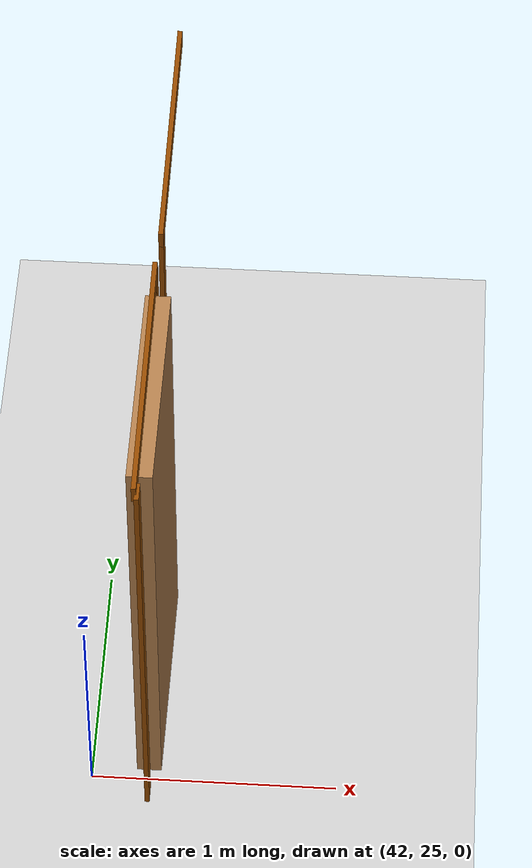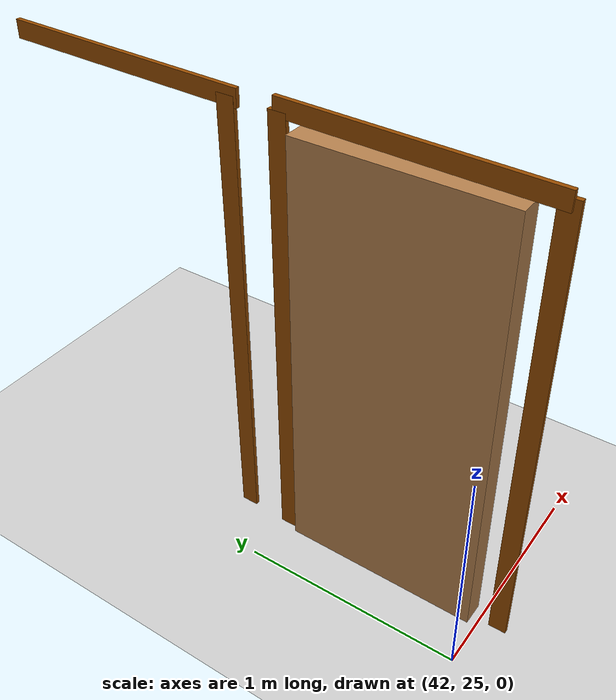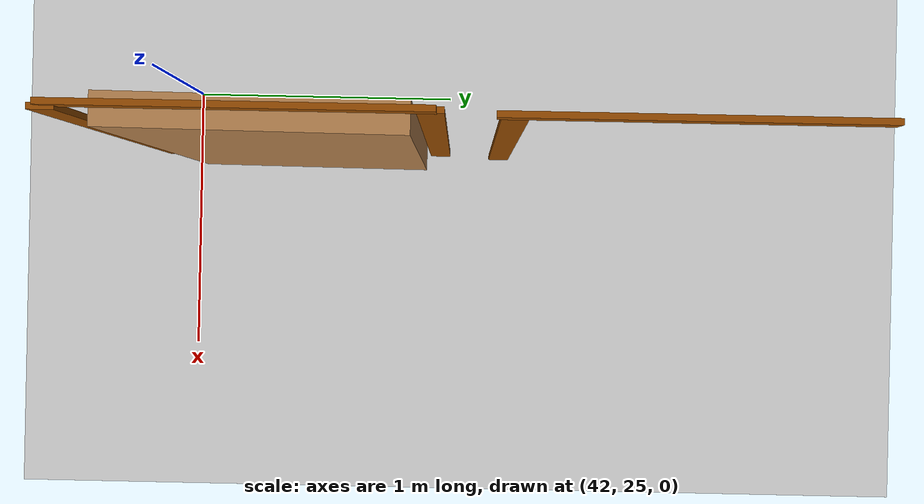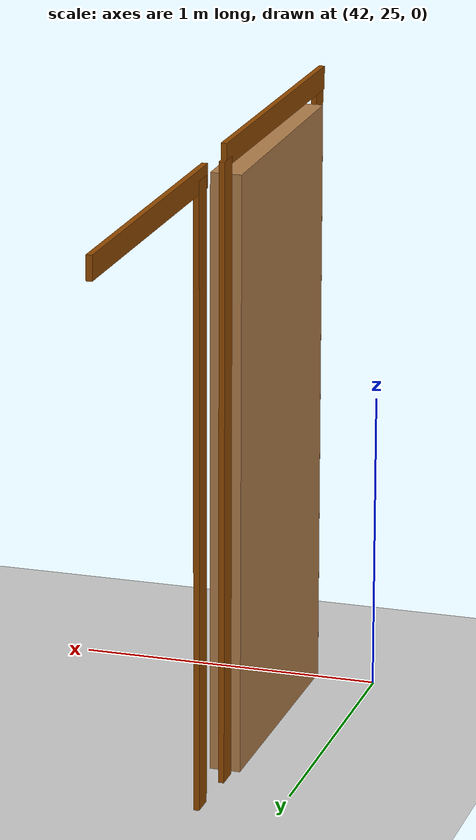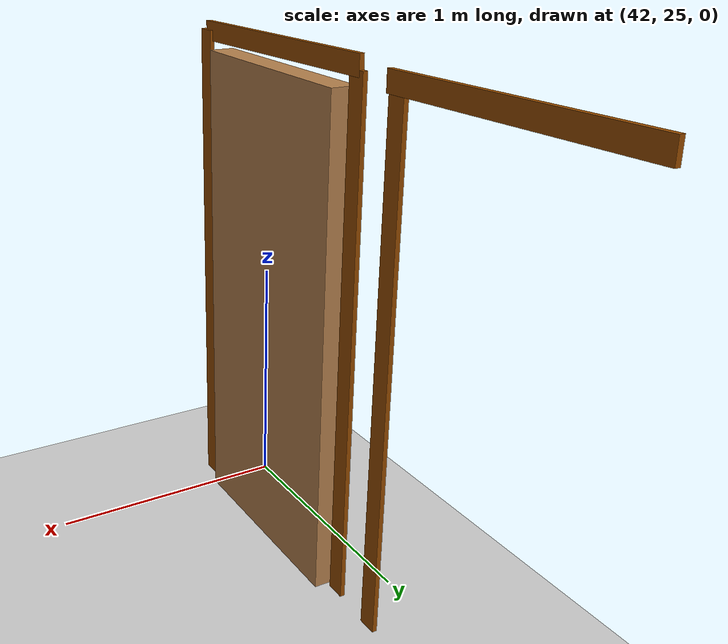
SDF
<sdf version="1.6">
 <world name="default">
  <model name="ground_plane">
   <static>1</static>
   <link name="link">
    <collision name="collision">
     <geometry><plane><normal>0 0 1</normal><size>100 100</size></plane></geometry>
     <surface><friction><ode><mu>100</mu><mu2>50</mu2></ode></friction></surface>
    </collision>
    <visual name="visual">
     <cast_shadows>0</cast_shadows>
     <geometry><plane><normal>0 0 1</normal><size>100 100</size></plane></geometry>
     <material>
      <script><uri>file://media/materials/scripts/gazebo.material</uri><name>Gazebo/Grey</name></script>
     </material>
    </visual>
   </link>
  </model>
  <model name="basic_ply_door_corrected_clone_0_clone_clone_0">
   <link name="link">
    <pose>-0 0 1.00385 0 -0 0</pose>
    <inertial>
     <mass>0.5167</mass>
     <inertia>
      <ixx>0.00086117</ixx>
      <ixy>0</ixy>
      <ixz>0</ixz>
      <iyy>0.00086117</iyy>
      <iyz>0</iyz>
      <izz>0.00086117</izz>
     </inertia>
    </inertial>
    <gravity>0</gravity>
    <visual name="visual">
     <geometry><box><size>0.88 0.1 1.96</size></box></geometry>
     <material>
      <script><uri>file://media/materials/scripts/gazebo.material</uri><name>Gazebo/Wood</name></script>
      <shader type="pixel"><normal_map>__default__</normal_map></shader>
      <ambient>1 1 1 1</ambient>
      <diffuse>1 1 1 1</diffuse>
      <specular>0.2 0.2 0.2 1</specular>
      <emissive>0 0 0 1</emissive>
     </material>
    </visual>
    <collision name="collision">
     <geometry><box><size>0.88 0.1 1.96</size></box></geometry>
     <surface>
      <friction>
       <ode><mu>1</mu><mu2>1</mu2><fdir1>0 0 0</fdir1><slip1>0</slip1><slip2>0</slip2></ode>
       <torsional>
        <coefficient>1</coefficient>
        <patch_radius>0</patch_radius>
        <surface_radius>0.01</surface_radius>
        <use_patch_radius>0</use_patch_radius>
        <ode><slip>0</slip></ode>
       </torsional>
      </friction>
      <bounce><restitution_coefficient>0</restitution_coefficient><threshold>1e+06</threshold></bounce>
      <contact>
       <collide_without_contact>0</collide_without_contact>
       <collide_without_contact_bitmask>1</collide_without_contact_bitmask>
       <collide_bitmask>1</collide_bitmask>
       <ode>
        <soft_cfm>0</soft_cfm>
        <soft_erp>0.2</soft_erp>
        <kp>100000</kp>
        <kd>100</kd>
        <max_vel>100</max_vel>
        <min_depth>0.001</min_depth>
       </ode>
       <bullet>
        <split_impulse>1</split_impulse>
        <split_impulse_penetration_threshold>-0.01</split_impulse_penetration_threshold>
        <soft_cfm>0</soft_cfm>
        <soft_erp>0.2</soft_erp>
        <kp>100000</kp>
        <kd>100</kd>
       </bullet>
      </contact>
     </surface>
    </collision>
   </link>
   <static>1</static>
   <pose>42.2357 25.4705 -0.00101 0 -0 1.56379</pose>
  </model>
  <model name="oak_frame_0_clone_clone">
   <link name="link">
    <inertial>
     <mass>1</mass>
     <inertia>
      <ixx>0.166667</ixx>
      <ixy>0</ixy>
      <ixz>0</ixz>
      <iyy>0.166667</iyy>
      <iyz>0</iyz>
      <izz>0.166667</izz>
     </inertia>
    </inertial>
    <visual name="visual">
     <geometry><box><size>0.018685 0.076446 2.026</size></box></geometry>
     <material>
      <script><name>Gazebo/Grey</name><uri>file://media/materials/scripts/gazebo.material</uri></script>
      <shader type="pixel"><normal_map>__default__</normal_map></shader>
      <diffuse>0.58 0.29 0 0</diffuse>
      <ambient>0.58 0.29 0 1</ambient>
      <specular>0.01 0.01 0.01 1</specular>
      <emissive>0 0 0 1</emissive>
     </material>
    </visual>
    <collision name="collision">
     <geometry><box><size>0.018685 0.076446 2.026</size></box></geometry>
     <surface>
      <friction>
       <ode><mu>1</mu><mu2>1</mu2><fdir1>0 0 0</fdir1><slip1>0</slip1><slip2>0</slip2></ode>
       <torsional>
        <coefficient>1</coefficient>
        <patch_radius>0</patch_radius>
        <surface_radius>0</surface_radius>
        <use_patch_radius>1</use_patch_radius>
        <ode><slip>0</slip></ode>
       </torsional>
      </friction>
      <bounce><restitution_coefficient>0</restitution_coefficient><threshold>1e+06</threshold></bounce>
      <contact>
       <collide_without_contact>0</collide_without_contact>
       <collide_without_contact_bitmask>1</collide_without_contact_bitmask>
       <collide_bitmask>1</collide_bitmask>
       <ode>
        <soft_cfm>0</soft_cfm>
        <soft_erp>0.2</soft_erp>
        <kp>1e+13</kp>
        <kd>1</kd>
        <max_vel>0.01</max_vel>
        <min_depth>0</min_depth>
       </ode>
       <bullet>
        <split_impulse>1</split_impulse>
        <split_impulse_penetration_threshold>-0.01</split_impulse_penetration_threshold>
        <soft_cfm>0</soft_cfm>
        <soft_erp>0.2</soft_erp>
        <kp>1e+13</kp>
        <kd>1</kd>
       </bullet>
      </contact>
     </surface>
    </collision>
   </link>
   <static>1</static>
   <pose>42.2231 25.9652 1.03242 0 -0 0</pose>
  </model>
  <model name="oak_frame_0_clone_clone_0">
   <link name="link">
    <inertial>
     <mass>1</mass>
     <inertia>
      <ixx>0.166667</ixx>
      <ixy>0</ixy>
      <ixz>0</ixz>
      <iyy>0.166667</iyy>
      <iyz>0</iyz>
      <izz>0.166667</izz>
     </inertia>
    </inertial>
    <visual name="visual">
     <geometry><box><size>0.018685 0.076446 2.026</size></box></geometry>
     <material>
      <script><name>Gazebo/Grey</name><uri>file://media/materials/scripts/gazebo.material</uri></script>
      <shader type="pixel"><normal_map>__default__</normal_map></shader>
      <diffuse>0.58 0.29 0 0</diffuse>
      <ambient>0.58 0.29 0 1</ambient>
      <specular>0.01 0.01 0.01 1</specular>
      <emissive>0 0 0 1</emissive>
     </material>
    </visual>
    <collision name="collision">
     <geometry><box><size>0.018685 0.076446 2.026</size></box></geometry>
     <surface>
      <friction>
       <ode><mu>1</mu><mu2>1</mu2><fdir1>0 0 0</fdir1><slip1>0</slip1><slip2>0</slip2></ode>
       <torsional>
        <coefficient>1</coefficient>
        <patch_radius>0</patch_radius>
        <surface_radius>0</surface_radius>
        <use_patch_radius>1</use_patch_radius>
        <ode><slip>0</slip></ode>
       </torsional>
      </friction>
      <bounce><restitution_coefficient>0</restitution_coefficient><threshold>1e+06</threshold></bounce>
      <contact>
       <collide_without_contact>0</collide_without_contact>
       <collide_without_contact_bitmask>1</collide_without_contact_bitmask>
       <collide_bitmask>1</collide_bitmask>
       <ode>
        <soft_cfm>0</soft_cfm>
        <soft_erp>0.2</soft_erp>
        <kp>1e+13</kp>
        <kd>1</kd>
        <max_vel>0.01</max_vel>
        <min_depth>0</min_depth>
       </ode>
       <bullet>
        <split_impulse>1</split_impulse>
        <split_impulse_penetration_threshold>-0.01</split_impulse_penetration_threshold>
        <soft_cfm>0</soft_cfm>
        <soft_erp>0.2</soft_erp>
        <kp>1e+13</kp>
        <kd>1</kd>
       </bullet>
      </contact>
     </surface>
    </collision>
   </link>
   <static>1</static>
   <pose>42.2348 24.9161 1.03242 0 -0 0</pose>
  </model>
  <model name="oak_frame_0_clone_clone_1">
   <link name="link">
    <inertial>
     <mass>1</mass>
     <inertia>
      <ixx>0.166667</ixx>
      <ixy>0</ixy>
      <ixz>0</ixz>
      <iyy>0.166667</iyy>
      <iyz>0</iyz>
      <izz>0.166667</izz>
     </inertia>
    </inertial>
    <visual name="visual">
     <geometry><box><size>0.018685 0.076446 2.026</size></box></geometry>
     <material>
      <script><name>Gazebo/Grey</name><uri>file://media/materials/scripts/gazebo.material</uri></script>
      <shader type="pixel"><normal_map>__default__</normal_map></shader>
      <diffuse>0.58 0.29 0 0</diffuse>
      <ambient>0.58 0.29 0 1</ambient>
      <specular>0.01 0.01 0.01 1</specular>
      <emissive>0 0 0 1</emissive>
     </material>
    </visual>
    <collision name="collision">
     <geometry><box><size>0.018685 0.076446 2.026</size></box></geometry>
     <surface>
      <friction>
       <ode><mu>1</mu><mu2>1</mu2><fdir1>0 0 0</fdir1><slip1>0</slip1><slip2>0</slip2></ode>
       <torsional>
        <coefficient>1</coefficient>
        <patch_radius>0</patch_radius>
        <surface_radius>0</surface_radius>
        <use_patch_radius>1</use_patch_radius>
        <ode><slip>0</slip></ode>
       </torsional>
      </friction>
      <bounce><restitution_coefficient>0</restitution_coefficient><threshold>1e+06</threshold></bounce>
      <contact>
       <collide_without_contact>0</collide_without_contact>
       <collide_without_contact_bitmask>1</collide_without_contact_bitmask>
       <collide_bitmask>1</collide_bitmask>
       <ode>
        <soft_cfm>0</soft_cfm>
        <soft_erp>0.2</soft_erp>
        <kp>1e+13</kp>
        <kd>1</kd>
        <max_vel>0.01</max_vel>
        <min_depth>0</min_depth>
       </ode>
       <bullet>
        <split_impulse>1</split_impulse>
        <split_impulse_penetration_threshold>-0.01</split_impulse_penetration_threshold>
        <soft_cfm>0</soft_cfm>
        <soft_erp>0.2</soft_erp>
        <kp>1e+13</kp>
        <kd>1</kd>
       </bullet>
      </contact>
     </surface>
    </collision>
   </link>
   <static>1</static>
   <pose>42.2324 26.1959 1.03242 0 -0 0</pose>
  </model>
  <model name="oak_frame_0_clone_0_clone">
   <link name="link">
    <inertial>
     <mass>1</mass>
     <inertia>
      <ixx>0.166667</ixx>
      <ixy>0</ixy>
      <ixz>0</ixz>
      <iyy>0.166667</iyy>
      <iyz>0</iyz>
      <izz>0.166667</izz>
     </inertia>
    </inertial>
    <visual name="visual">
     <geometry><box><size>0.018685 0.076446 1.08038</size></box></geometry>
     <material>
      <script><name>Gazebo/Grey</name><uri>file://media/materials/scripts/gazebo.material</uri></script>
      <shader type="pixel"><normal_map>__default__</normal_map></shader>
      <diffuse>0.58 0.29 0 0</diffuse>
      <ambient>0.58 0.29 0 1</ambient>
      <specular>0.01 0.01 0.01 1</specular>
      <emissive>0 0 0 1</emissive>
     </material>
    </visual>
    <collision name="collision">
     <geometry><box><size>0.018685 0.076446 1.08038</size></box></geometry>
     <surface>
      <friction>
       <ode><mu>1</mu><mu2>1</mu2><fdir1>0 0 0</fdir1><slip1>0</slip1><slip2>0</slip2></ode>
       <torsional>
        <coefficient>1</coefficient>
        <patch_radius>0</patch_radius>
        <surface_radius>0</surface_radius>
        <use_patch_radius>1</use_patch_radius>
        <ode><slip>0</slip></ode>
       </torsional>
      </friction>
      <bounce><restitution_coefficient>0</restitution_coefficient><threshold>1e+06</threshold></bounce>
      <contact>
       <collide_without_contact>0</collide_without_contact>
       <collide_without_contact_bitmask>1</collide_without_contact_bitmask>
       <collide_bitmask>1</collide_bitmask>
       <ode>
        <soft_cfm>0</soft_cfm>
        <soft_erp>0.2</soft_erp>
        <kp>1e+13</kp>
        <kd>1</kd>
        <max_vel>0.01</max_vel>
        <min_depth>0</min_depth>
       </ode>
       <bullet>
        <split_impulse>1</split_impulse>
        <split_impulse_penetration_threshold>-0.01</split_impulse_penetration_threshold>
        <soft_cfm>0</soft_cfm>
        <soft_erp>0.2</soft_erp>
        <kp>1e+13</kp>
        <kd>1</kd>
       </bullet>
      </contact>
     </surface>
    </collision>
   </link>
   <static>1</static>
   <pose>42.2236 25.4423 2.05002 -1.55236 0 0</pose>
  </model>
  <model name="oak_frame_0_clone_0_clone_0">
   <link name="link">
    <inertial>
     <mass>1</mass>
     <inertia>
      <ixx>0.166667</ixx>
      <ixy>0</ixy>
      <ixz>0</ixz>
      <iyy>0.166667</iyy>
      <iyz>0</iyz>
      <izz>0.166667</izz>
     </inertia>
    </inertial>
    <visual name="visual">
     <geometry><box><size>0.018685 0.076446 1.08038</size></box></geometry>
     <material>
      <script><name>Gazebo/Grey</name><uri>file://media/materials/scripts/gazebo.material</uri></script>
      <shader type="pixel"><normal_map>__default__</normal_map></shader>
      <diffuse>0.58 0.29 0 0</diffuse>
      <ambient>0.58 0.29 0 1</ambient>
      <specular>0.01 0.01 0.01 1</specular>
      <emissive>0 0 0 1</emissive>
     </material>
    </visual>
    <collision name="collision">
     <geometry><box><size>0.018685 0.076446 1.08038</size></box></geometry>
     <surface>
      <friction>
       <ode><mu>1</mu><mu2>1</mu2><fdir1>0 0 0</fdir1><slip1>0</slip1><slip2>0</slip2></ode>
       <torsional>
        <coefficient>1</coefficient>
        <patch_radius>0</patch_radius>
        <surface_radius>0</surface_radius>
        <use_patch_radius>1</use_patch_radius>
        <ode><slip>0</slip></ode>
       </torsional>
      </friction>
      <bounce><restitution_coefficient>0</restitution_coefficient><threshold>1e+06</threshold></bounce>
      <contact>
       <collide_without_contact>0</collide_without_contact>
       <collide_without_contact_bitmask>1</collide_without_contact_bitmask>
       <collide_bitmask>1</collide_bitmask>
       <ode>
        <soft_cfm>0</soft_cfm>
        <soft_erp>0.2</soft_erp>
        <kp>1e+13</kp>
        <kd>1</kd>
        <max_vel>0.01</max_vel>
        <min_depth>0</min_depth>
       </ode>
       <bullet>
        <split_impulse>1</split_impulse>
        <split_impulse_penetration_threshold>-0.01</split_impulse_penetration_threshold>
        <soft_cfm>0</soft_cfm>
        <soft_erp>0.2</soft_erp>
        <kp>1e+13</kp>
        <kd>1</kd>
       </bullet>
      </contact>
     </surface>
    </collision>
   </link>
   <static>1</static>
   <pose>42.2332 26.6847 2.05002 -1.55236 0 0</pose>
  </model>
 </world>
</sdf>
